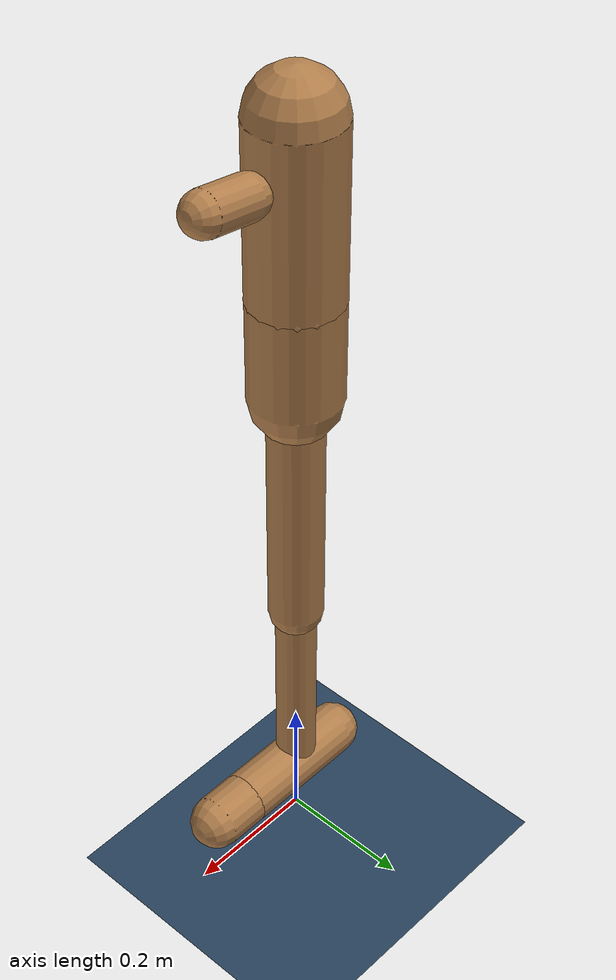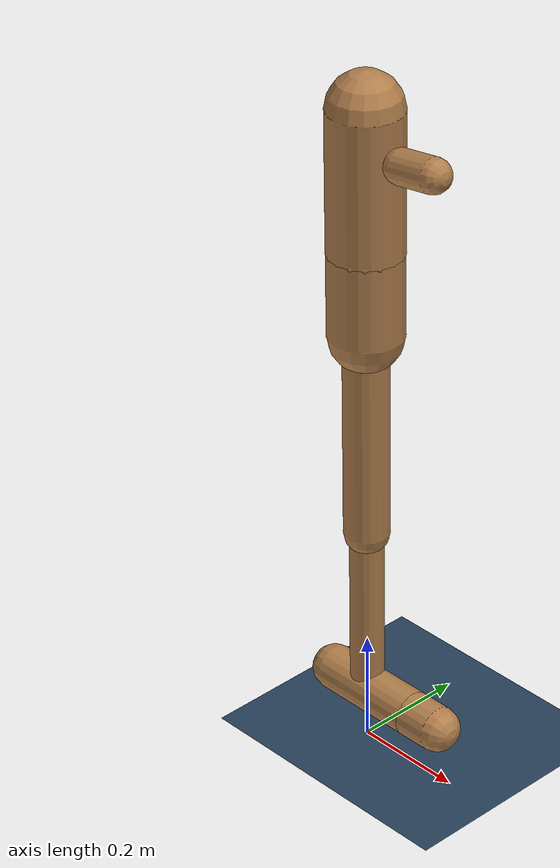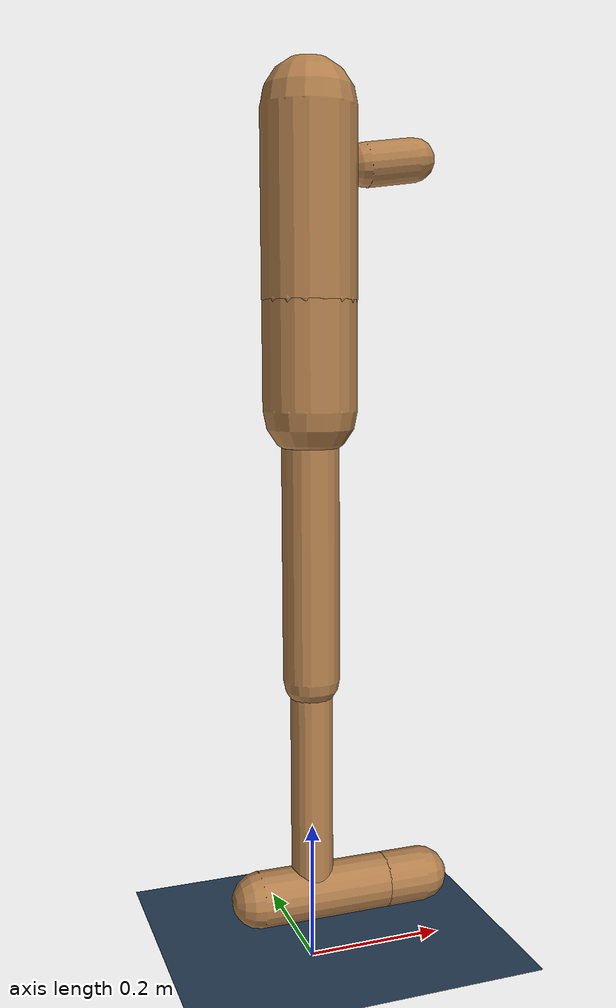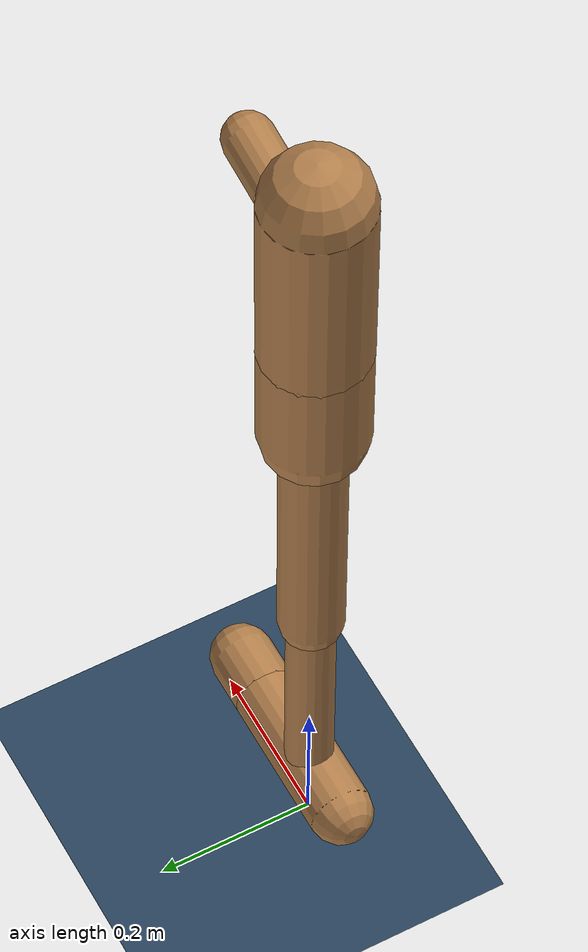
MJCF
<mujoco model="planar hopper">
  <include file="./common/skybox.xml"/>
  <include file="./common/visual.xml"/>
  <include file="./common/materials.xml"/>

  <statistic extent="2" center="0 0 .5"/>

  <default>
    <default class="hopper">
      <joint type="hinge" axis="0 1 0" limited="true" damping=".05" armature=".2"/>
      <geom type="capsule" material="self"/>
      <site type="sphere" size="0.05" group="3"/>
    </default>
    <default class="free">
      <joint limited="false" damping="0" armature="0" stiffness="0"/>
    </default>
    <motor ctrlrange="-1 1" ctrllimited="true"/>
  </default>

  <option timestep="0.005"/>

  <worldbody>
    <camera name="cam0" pos="0 -2.8 0.8" euler="90 0 0" mode="trackcom"/>
    <camera name="back" pos="-2 -.2 1.2" xyaxes="0.2 -1 0 .5 0 2" mode="trackcom"/>
    <geom name="floor" type="plane" conaffinity="1" pos="48 0 0" size="50 1 .2" material="grid"/>
    <body name="torso" pos="0 0 1" childclass="hopper">
      <light name="top" pos="0 0 2" mode="trackcom"/>
      <joint name="rootx" type="slide" axis="1 0 0" class="free"/>
      <joint name="rootz" type="slide" axis="0 0 1" class="free"/>
      <joint name="rooty" type="hinge" axis="0 1 0" class="free"/>
      <geom name="torso" fromto="0 0 -.05 0 0 .2" size="0.0653"/>
      <geom name="nose" fromto=".08 0 .13 .15 0 .14" size="0.03"/>
      <body name="pelvis" pos="0 0 -.05">
        <joint name="waist" range="-30 30"/>
        <geom name="pelvis" fromto="0 0 0 0 0 -.15" size="0.065"/>
        <body name="thigh" pos="0 0 -.2">
          <joint name="hip" range="-144 10"/>
          <geom name="thigh" fromto="0 0 0 0 0 -.33" size="0.04"/>
          <body name="calf" pos="0 0 -.33">
            <joint name="knee" range="5 150"/>
            <geom name="calf" fromto="0 0 0 0 0 -.32" size="0.03"/>
            <!-- foot slightly modified from original mjcf
            split into heel and toe for force calculation convienence -->
            <body name="foot_heel" pos="0 0 -.32">
              <joint name="ankle" range="-45 45"/>
              <geom name="foot_heel" fromto="-.08 0 0 .11 0 0" size="0.04"/>
                <body name="foot_toe">
                  <joint name="fix_toe2heel" type="fixed"/>
                  <geom name="foot_toe" fromto=".11 0 0 .17 0 0" size="0.04"/>
                </body>
            </body>
          </body>
        </body>
      </body>
    </body>
  </worldbody>

  <sensor>
    <subtreelinvel name="torso_subtreelinvel" body="torso"/>
    <touch name="touch_toe" site="touch_toe"/>
    <touch name="touch_heel" site="touch_heel"/>
  </sensor>

  <actuator>
    <motor name="waist" joint="waist" gear="30"/>
    <motor name="hip" joint="hip" gear="40"/>
    <motor name="knee" joint="knee" gear="30"/>
    <motor name="ankle" joint="ankle" gear="10"/>
  </actuator>
</mujoco>

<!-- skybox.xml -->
<mujoco>
  <asset>
      <texture name="skybox" type="skybox" builtin="gradient" rgb1=".4 .6 .8" rgb2="0 0 0"
               width="800" height="800" mark="random" markrgb="1 1 1"/>
  </asset>
</mujoco>

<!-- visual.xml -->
<mujoco>
  <visual>
    <headlight ambient=".4 .4 .4" diffuse=".8 .8 .8" specular="0.1 0.1 0.1"/>
    <map znear=".01"/>
    <quality shadowsize="2048"/>
  </visual>
</mujoco>

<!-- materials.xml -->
<!--
Common textures, colors and materials to be used throughout this suite. Some
materials such as xxx_highlight are activated on occurence of certain events,
for example receiving a positive reward.
-->
<mujoco>
  <asset>
    <texture name="grid" type="2d" builtin="checker" rgb1=".1 .2 .3" rgb2=".2 .3 .4" width="300" height="300" mark="edge" markrgb=".2 .3 .4"/>
    <material name="grid" texture="grid" texrepeat="1 1" texuniform="true" reflectance=".2"/>
    <material name="self" rgba=".7 .5 .3 1"/>
    <material name="self_default" rgba=".7 .5 .3 1"/>
    <material name="self_highlight" rgba="0 .5 .3 1"/>
    <material name="effector" rgba=".7 .4 .2 1"/>
    <material name="effector_default" rgba=".7 .4 .2 1"/>
    <material name="effector_highlight" rgba="0 .5 .3 1"/>
    <material name="decoration" rgba=".3 .5 .7 1"/>
    <material name="eye" rgba="0 .2 1 1"/>
    <material name="target" rgba=".6 .3 .3 1"/>
    <material name="target_default" rgba=".6 .3 .3 1"/>
    <material name="target_highlight" rgba=".6 .3 .3 .4"/>
    <material name="site" rgba=".5 .5 .5 .3"/>
  </asset>
</mujoco>
